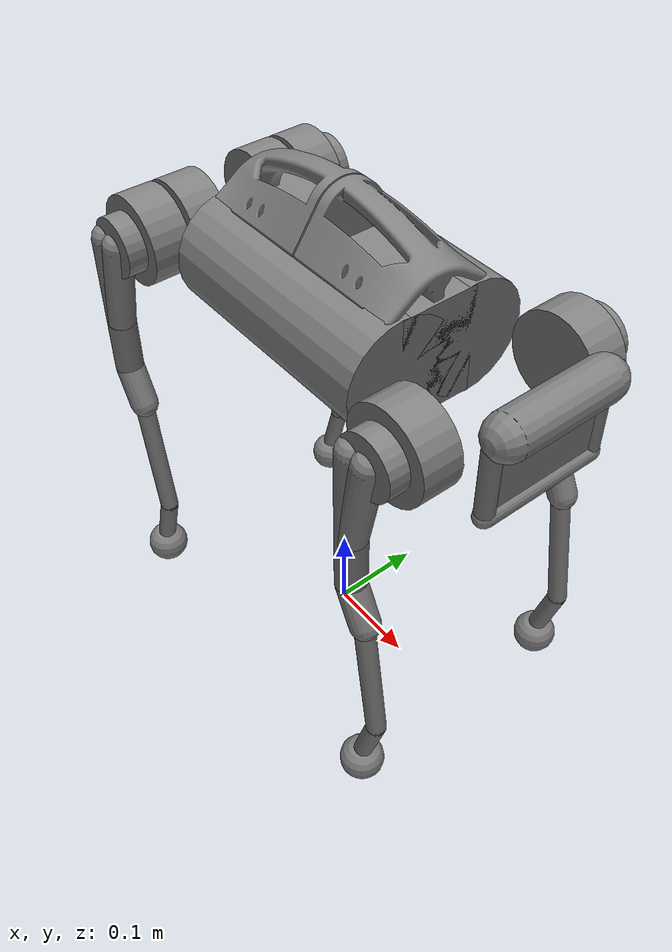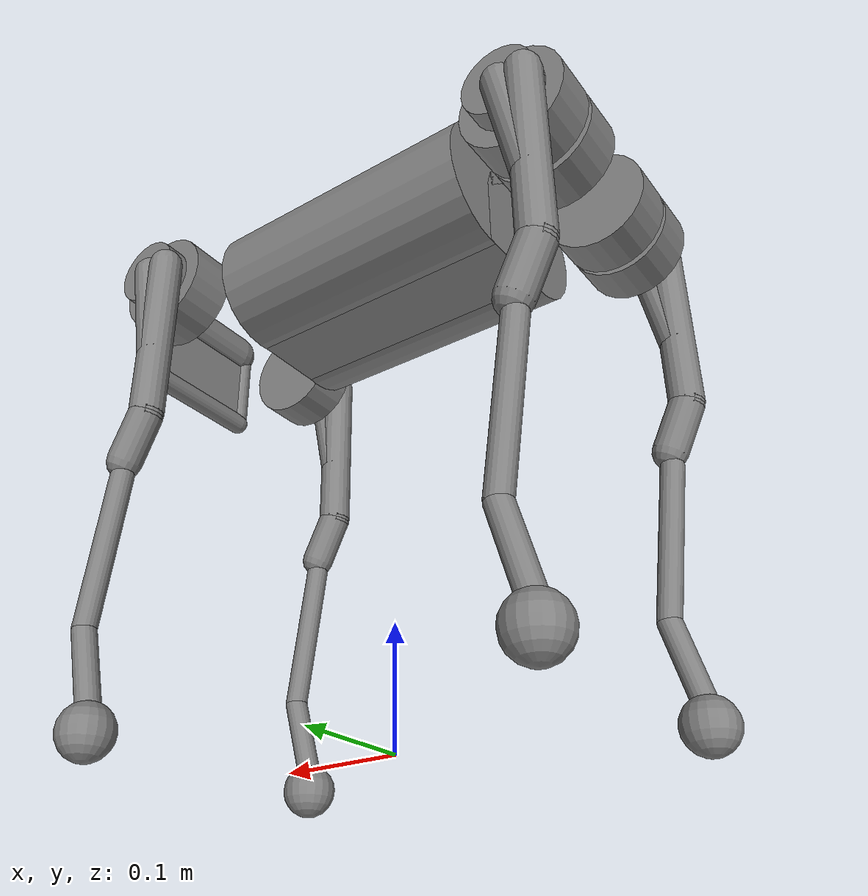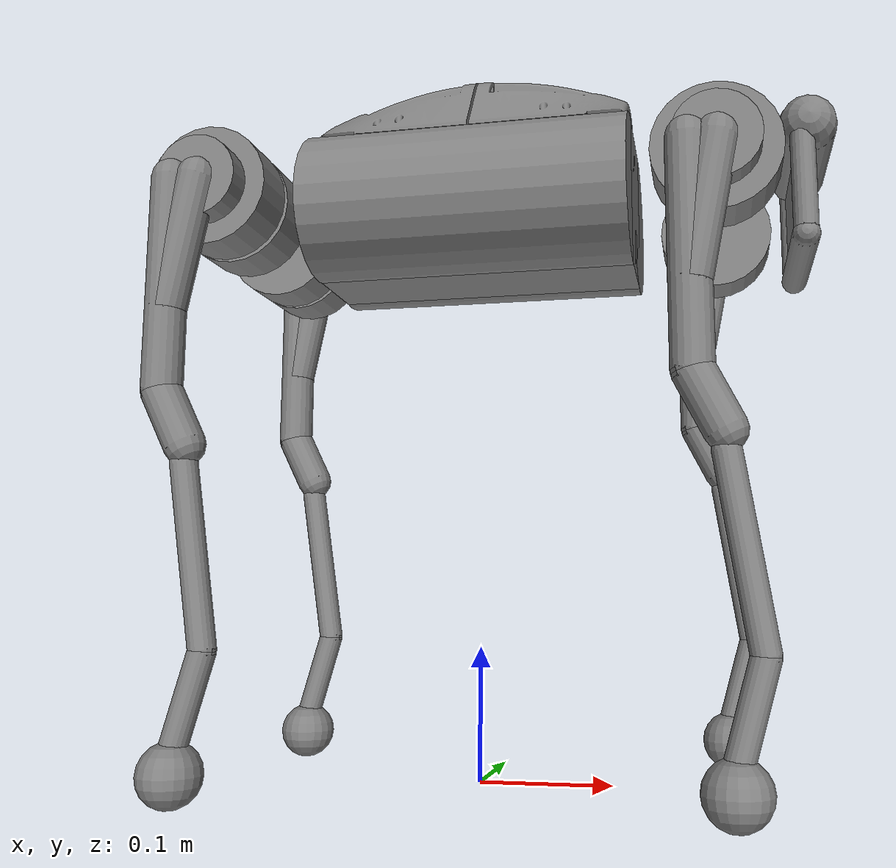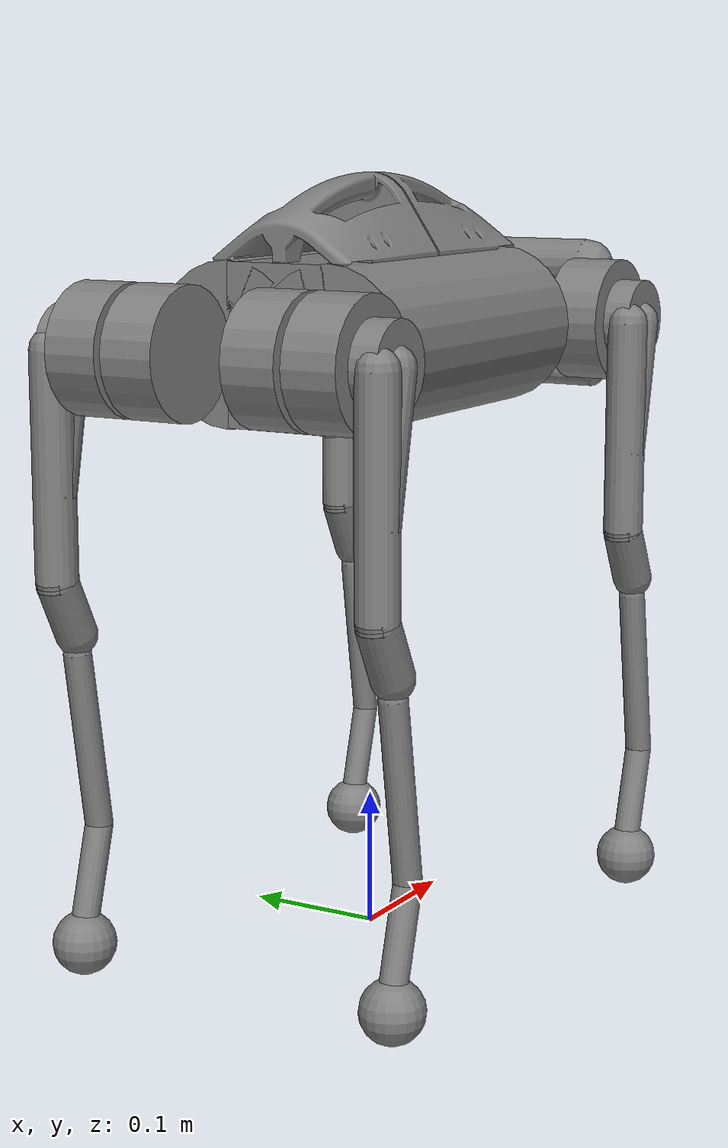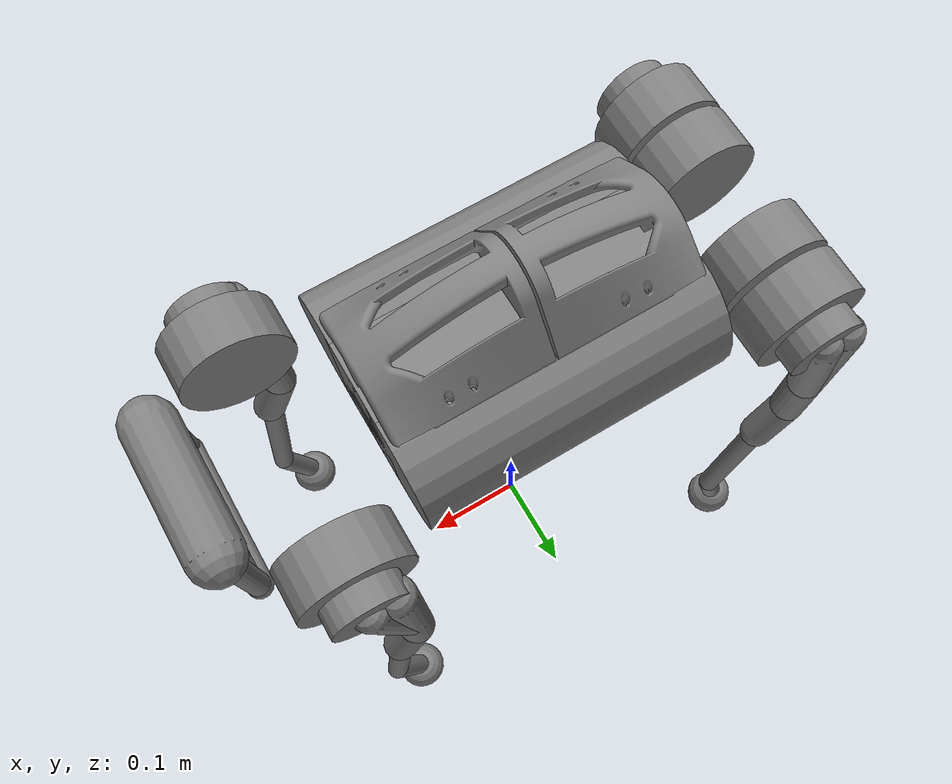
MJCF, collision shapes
<mujoco model="go1">
  <compiler angle="radian" meshdir="../assets" />

  <option timestep="0.002" cone="elliptic" impratio="100" />

  <default>
    <default class="go1">
      <geom friction="0.6" margin="0.001" condim="1" />
      <joint axis="0 1 0" damping="2" armature="0.01" frictionloss="0.2" limited="true" />
      <motor gear="1" ctrllimited="true" />
      <default class="abduction">
        <joint axis="1 0 0" damping="1" range="-1.047 1.047" />
        <motor ctrlrange="-23.7 23.7" />
      </default>
      <default class="hip">
        <joint range="-0.663 2.966" />
        <motor ctrlrange="-23.7 23.7" />
      </default>
      <default class="knee">
        <joint range="-2.721 -0.837" />
        <motor ctrlrange="-35.55 35.55" />
      </default>
      <default class="visual">
        <geom type="mesh" contype="0" conaffinity="0" group="2" material="dark" />
      </default>
      <default class="collision">
        <geom group="3" type="capsule" />
        <default class="hip_left1">
          <geom size="0.046 0.02" pos="0 0.045 0" quat="1 1 0 0" type="cylinder" />
        </default>
        <default class="hip_left2">
          <geom size="0.031 0.02" pos="0 0.065 0" quat="1 1 0 0" type="cylinder" />
        </default>
        <default class="hip_left3">
          <geom size="0.046 0.02" quat="1 1 0 0" type="cylinder" />
        </default>
        <default class="hip_right1">
          <geom size="0.046 0.02" pos="0 -0.045 0" quat="1 1 0 0" type="cylinder" />
        </default>
        <default class="hip_right2">
          <geom size="0.031 0.02" pos="0 -0.065 0" quat="1 1 0 0" type="cylinder" />
        </default>
        <default class="hip_right3">
          <geom size="0.046 0.02" quat="1 1 0 0" type="cylinder" />
        </default>
        <default class="thigh1">
          <geom size="0.015" fromto="-0.02 0 0 -0.02 0 -0.16" />
        </default>
        <default class="thigh2">
          <geom size="0.015" fromto="0 0 0 -0.02 0 -0.1" />
        </default>
        <default class="thigh3">
          <geom size="0.015" fromto="-0.02 0 -0.16 0 0 -0.2" />
        </default>
        <default class="calf1">
          <geom size="0.01" fromto="0 0 0 0.02 0 -0.13" />
        </default>
        <default class="calf2">
          <geom size="0.01" fromto="0.02 0 -0.13 0 0 -0.2" />
        </default>
        <default class="foot">
          <geom type="sphere" size="0.023" pos="0 0 -0.213" priority="1" solimp="0.015 1 0.031"
            condim="6" friction="0.8 0.02 0.01" />
        </default>
        <default class="foot_site">
          <site type="sphere" size="0.023" pos="0 0 -0.213" rgba="0.5 0.5 0.5 0.0" />
        </default>
      </default>
    </default>
  </default>

  <asset>
    <material name="dark" rgba="0.1 0.1 0.1 1.0" />
    <mesh class="go1" file="trunk.stl" />
    <mesh class="go1" file="hip.stl" />
    <mesh class="go1" file="thigh_mirror.stl" />
    <mesh class="go1" file="calf.stl" />
    <mesh class="go1" file="thigh.stl" />
    <mesh class="go1" file="shell.stl" scale="0.001 0.001 0.001" />
  </asset>

  <worldbody>
    <body name="trunk" pos="0 0 0.445" childclass="go1">
      <light pos="0 0 5" mode="trackcom" diffuse="0.8 0.8 0.8" />
      <site name="torso" group="5" />
      <site name="head" pos="0.3 0 0" rgba="1 0 0 1" size=".02" group="5" />
      <inertial pos="0.0116053 0.00442221 0.000106692"
        quat="0.0111438 0.707126 -0.00935374 0.706938" mass="4.801"
        diaginertia="0.0447997 0.0366257 0.0162187" />
      <geom class="visual" mesh="trunk" />
      <geom class="collision" size="0.125 0.04 0.057" type="box" />
      <geom class="collision" quat="1 0 1 0" pos="0 -0.04 0" size="0.058 0.125" type="cylinder" />
      <geom class="collision" quat="1 0 1 0" pos="0 +0.04 0" size="0.058 0.125" type="cylinder" />
      <geom class="collision" pos="0.25 0 0" size="0.005 0.06 0.05" type="box" />
      <geom class="collision" pos="0.25 0.06 -0.01" size="0.009 0.035" />
      <geom class="collision" pos="0.25 -0.06 -0.01" size="0.009 0.035" />
      <geom class="collision" pos="0.25 0 -0.05" size="0.01 0.06" quat="1 1 0 0" />
      <geom class="collision" pos="0.255 0 0.0355" size="0.021 0.052" quat="1 1 0 0" />
      <geom mesh="shell" pos="0 0 0.057" quat="1 1 0 0" class="visual" />
      <geom mesh="shell" pos="0 0 0.057" quat="0 0 1 1" class="visual" />
      <geom mesh="shell" pos="0 0 0.057" quat="1 1 0 0" class="collision" type="mesh" />
      <geom mesh="shell" pos="0 0 0.057" quat="0 0 1 1" class="collision" type="mesh" />
      <site name="imu" pos="0 0 0" />
      <body name="FR_hip" pos="0.1881 -0.04675 0">
        <inertial pos="-0.00406411 -0.0193463 4.50733e-06"
          quat="0.467526 0.531662 -0.466259 0.530431" mass="0.679292"
          diaginertia="0.00131334 0.00122648 0.000728484" />
        <joint class="abduction" name="FR_hip_joint" />
        <geom class="visual" mesh="hip" quat="1 0 0 0" />
        <geom class="hip_right1" />
        <geom class="hip_right2" />
        <body name="FR_thigh" pos="0 -0.08 0">
          <inertial pos="-0.003468 0.018947 -0.032736"
            quat="0.999266 0.00067676 -0.0382978 0.000639813" mass="0.898919"
            diaginertia="0.00542178 0.00514246 0.000998869" />
          <joint class="hip" name="FR_thigh_joint" />
          <geom class="visual" mesh="thigh_mirror" />
          <geom class="thigh1" />
          <geom class="thigh2" />
          <geom class="thigh3" />
          <body name="FR_calf" pos="0 0 -0.213">
            <inertial pos="0.00455603 0.0009473 -0.147239"
              quat="0.762045 0.00970173 0.0180098 0.647201" mass="0.218015"
              diaginertia="0.00399678 0.00398122 3.99428e-05" />
            <joint class="knee" name="FR_calf_joint" />
            <geom class="visual" mesh="calf" />
            <geom class="calf1" />
            <geom class="calf2" />
            <geom name="FR" class="foot" />
            <site name="FR_foot_site" class="foot_site" />
          </body>
        </body>
      </body>
      <body name="FL_hip" pos="0.1881 0.04675 0">
        <inertial pos="-0.00406411 0.0193463 4.50733e-06"
          quat="0.531662 0.467526 -0.530431 0.466259" mass="0.679292"
          diaginertia="0.00131334 0.00122648 0.000728484" />
        <joint class="abduction" name="FL_hip_joint" />
        <geom class="visual" mesh="hip" />
        <geom class="hip_left1" />
        <geom class="hip_left2" />
        <body name="FL_thigh" pos="0 0.08 0">
          <inertial pos="-0.003468 -0.018947 -0.032736"
            quat="0.999266 -0.00067676 -0.0382978 -0.000639813" mass="0.898919"
            diaginertia="0.00542178 0.00514246 0.000998869" />
          <joint class="hip" name="FL_thigh_joint" />
          <geom class="visual" mesh="thigh" />
          <geom class="thigh1" />
          <geom class="thigh2" />
          <geom class="thigh3" />
          <body name="FL_calf" pos="0 0 -0.213">
            <inertial pos="0.00455603 0.0009473 -0.147239"
              quat="0.762045 0.00970173 0.0180098 0.647201" mass="0.218015"
              diaginertia="0.00399678 0.00398122 3.99428e-05" />
            <joint class="knee" name="FL_calf_joint" />
            <geom class="visual" mesh="calf" />
            <geom class="calf1" />
            <geom class="calf2" />
            <geom name="FL" class="foot" />
            <site name="FL_foot_site" class="foot_site" />
          </body>
        </body>
      </body>
      <body name="RR_hip" pos="-0.1881 -0.04675 0">
        <inertial pos="0.00406411 -0.0193463 4.50733e-06"
          quat="0.530431 0.466259 -0.531662 0.467526" mass="0.679292"
          diaginertia="0.00131334 0.00122648 0.000728484" />
        <joint class="abduction" name="RR_hip_joint" />
        <geom class="visual" quat="0 0 0 -1" mesh="hip" />
        <geom class="hip_right1" />
        <geom class="hip_right2" />
        <geom class="hip_right3" />
        <body name="RR_thigh" pos="0 -0.08 0">
          <inertial pos="-0.003468 0.018947 -0.032736"
            quat="0.999266 0.00067676 -0.0382978 0.000639813" mass="0.898919"
            diaginertia="0.00542178 0.00514246 0.000998869" />
          <joint class="hip" name="RR_thigh_joint" />
          <geom class="visual" mesh="thigh_mirror" />
          <geom class="thigh1" />
          <geom class="thigh2" />
          <geom class="thigh3" />
          <body name="RR_calf" pos="0 0 -0.213">
            <inertial pos="0.00455603 0.0009473 -0.147239"
              quat="0.762045 0.00970173 0.0180098 0.647201" mass="0.218015"
              diaginertia="0.00399678 0.00398122 3.99428e-05" />
            <joint class="knee" name="RR_calf_joint" />
            <geom class="visual" mesh="calf" />
            <geom class="calf1" />
            <geom class="calf2" />
            <geom name="RR" class="foot" />
            <site name="RR_foot_site" class="foot_site" />
          </body>
        </body>
      </body>
      <body name="RL_hip" pos="-0.1881 0.04675 0">
        <inertial pos="0.00406411 0.0193463 4.50733e-06"
          quat="0.466259 0.530431 -0.467526 0.531662" mass="0.679292"
          diaginertia="0.00131334 0.00122648 0.000728484" />
        <joint class="abduction" name="RL_hip_joint" />
        <geom class="visual" quat="0 0 1 0" mesh="hip" />
        <geom class="hip_left1" />
        <geom class="hip_left2" />
        <geom class="hip_left3" />
        <body name="RL_thigh" pos="0 0.08 0">
          <inertial pos="-0.003468 -0.018947 -0.032736"
            quat="0.999266 -0.00067676 -0.0382978 -0.000639813" mass="0.898919"
            diaginertia="0.00542178 0.00514246 0.000998869" />
          <joint class="hip" name="RL_thigh_joint" />
          <geom class="visual" mesh="thigh" />
          <geom class="thigh1" />
          <geom class="thigh2" />
          <geom class="thigh3" />
          <body name="RL_calf" pos="0 0 -0.213">
            <inertial pos="0.00455603 0.0009473 -0.147239"
              quat="0.762045 0.00970173 0.0180098 0.647201" mass="0.218015"
              diaginertia="0.00399678 0.00398122 3.99428e-05" />
            <joint class="knee" name="RL_calf_joint" />
            <geom class="visual" mesh="calf" />
            <geom class="calf1" />
            <geom class="calf2" />
            <geom name="RL" class="foot" />
            <site name="RL_foot_site" class="foot_site" />
          </body>
        </body>
      </body>
    </body>
  </worldbody>

  <actuator>
    <motor class="abduction" name="FR_hip" joint="FR_hip_joint" />
    <motor class="hip" name="FR_thigh" joint="FR_thigh_joint" />
    <motor class="knee" name="FR_calf" joint="FR_calf_joint" />
    <motor class="abduction" name="FL_hip" joint="FL_hip_joint" />
    <motor class="hip" name="FL_thigh" joint="FL_thigh_joint" />
    <motor class="knee" name="FL_calf" joint="FL_calf_joint" />
    <motor class="abduction" name="RR_hip" joint="RR_hip_joint" />
    <motor class="hip" name="RR_thigh" joint="RR_thigh_joint" />
    <motor class="knee" name="RR_calf" joint="RR_calf_joint" />
    <motor class="abduction" name="RL_hip" joint="RL_hip_joint" />
    <motor class="hip" name="RL_thigh" joint="RL_thigh_joint" />
    <motor class="knee" name="RL_calf" joint="RL_calf_joint" />
  </actuator>

  <sensor>
    <subtreelinvel name="trunk_linvel" body="trunk" />
    <subtreeangmom name="torso_angmom" body="trunk" />
    <framepos objtype="site" objname="head" />

    <accelerometer name="Body_Acc" site="imu" />

    <gyro name="Body_Gyro" site="imu" />

    <framepos name="Body_Pos" objtype="site" objname="imu" />

    <framequat name="Body_Quat" objtype="site" objname="imu" />
    <velocimeter name="velocimeter" site="imu" />
    <touch name="FR_foot_touch" site="FR_foot_site" />
    <touch name="FL_foot_touch" site="FL_foot_site" />
    <touch name="RR_foot_touch" site="RR_foot_site" />
    <touch name="RL_foot_touch" site="RL_foot_site" />
  </sensor>

</mujoco>
